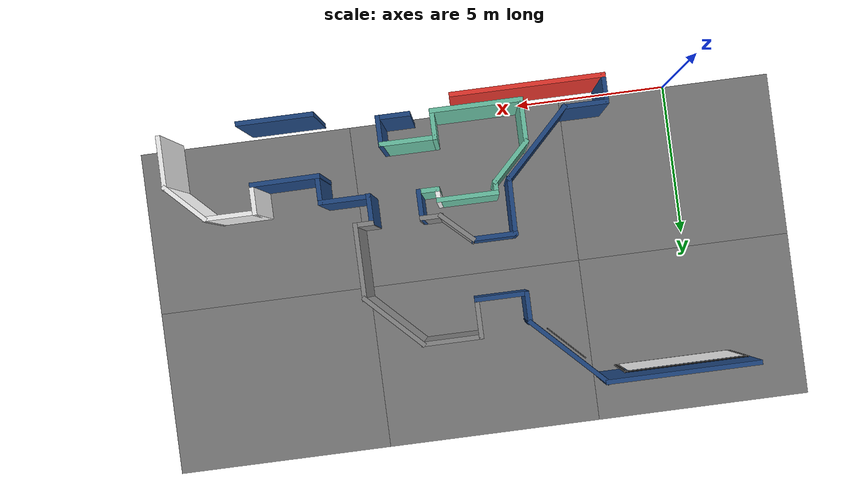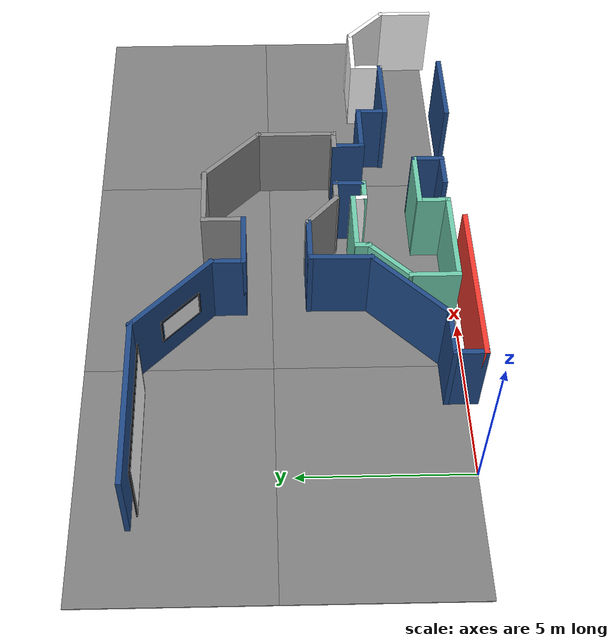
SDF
<sdf version="1.7">
 <world name="default">
  <model name="among_us_world">
   <pose>0.133216 -0.12311 0 0 -0 0</pose>
   <link name="Wall_0">
    <collision name="Wall_0_Collision">
     <geometry><box><size>5 0.15 2.5</size></box></geometry>
     <pose>0 0 1.25 0 -0 0</pose>
    </collision>
    <visual name="Wall_0_Visual">
     <pose>0 0 1.25 0 -0 0</pose>
     <geometry><box><size>5 0.15 2.5</size></box></geometry>
     <material>
      <ambient>0.12549 0.290196 0.529412 1</ambient>
      <diffuse>0.12549 0.290196 0.529412 1</diffuse>
      <specular>0.08 0.08 0.08 1</specular>
      <emissive>0 0 0 1</emissive>
      <pbr>
       <metal>
        <albedo_map>model://asphalt_plane/materials/textures/tarmac.png</albedo_map>
        <roughness>0.85</roughness>
        <metalness>0</metalness>
       </metal>
      </pbr>
     </material>
     <meta><layer>0</layer></meta>
    </visual>
    <pose>0.883234 9.56872 0 0 -0 0</pose>
   </link>
   <link name="Wall_1">
    <collision name="Wall_1_Collision">
     <geometry><box><size>3.25 0.15 2.5</size></box></geometry>
     <pose>0 0 1.25 0 -0 0</pose>
    </collision>
    <visual name="Wall_1_Visual">
     <pose>0 0 1.25 0 -0 0</pose>
     <geometry><box><size>3.25 0.15 2.5</size></box></geometry>
     <material>
      <ambient>0.12549 0.290196 0.529412 1</ambient>
      <diffuse>0.12549 0.290196 0.529412 1</diffuse>
      <specular>0.08 0.08 0.08 1</specular>
      <emissive>0 0 0 1</emissive>
      <pbr>
       <metal>
        <albedo_map>model://asphalt_plane/materials/textures/tarmac.png</albedo_map>
        <roughness>0.85</roughness>
        <metalness>0</metalness>
       </metal>
      </pbr>
     </material>
     <meta><layer>0</layer></meta>
    </visual>
    <pose>4.40446 8.47278 0 0 -0 -0.785267</pose>
   </link>
   <link name="Wall_10">
    <collision name="Wall_10_Collision">
     <geometry><box><size>0.677967 0.15 2.5</size></box></geometry>
     <pose>0 0 1.25 0 -0 0</pose>
    </collision>
    <visual name="Wall_10_Visual">
     <pose>0 0 1.25 0 -0 0</pose>
     <geometry><box><size>0.677967 0.15 2.5</size></box></geometry>
     <material>
      <ambient>0.55 0.55 0.55 1</ambient>
      <diffuse>0.55 0.55 0.55 1</diffuse>
      <specular>0.08 0.08 0.08 1</specular>
      <emissive>0 0 0 1</emissive>
      <pbr><metal><roughness>0.85</roughness><metalness>0</metalness></metal></pbr>
     </material>
     <meta><layer>0</layer></meta>
    </visual>
    <pose>10.3484 3.61514 0 0 -0 3.14159</pose>
   </link>
   <link name="Wall_11">
    <collision name="Wall_11_Collision">
     <geometry><box><size>1 0.15 2.5</size></box></geometry>
     <pose>0 0 1.25 0 -0 0</pose>
    </collision>
    <visual name="Wall_11_Visual">
     <pose>0 0 1.25 0 -0 0</pose>
     <geometry><box><size>1 0.15 2.5</size></box></geometry>
     <material>
      <ambient>0.12549 0.290196 0.529412 1</ambient>
      <diffuse>0.12549 0.290196 0.529412 1</diffuse>
      <specular>0.08 0.08 0.08 1</specular>
      <emissive>0 0 0 1</emissive>
      <pbr>
       <metal>
        <albedo_map>model://asphalt_plane/materials/textures/tarmac.png</albedo_map>
        <roughness>0.85</roughness>
        <metalness>0</metalness>
       </metal>
      </pbr>
     </material>
     <meta><layer>0</layer></meta>
    </visual>
    <pose>10.0844 3.17225 0 0 -0 -1.5708</pose>
   </link>
   <link name="Wall_118">
    <collision name="Wall_118_Collision">
     <geometry><box><size>1.5 0.15 2.5</size></box></geometry>
     <pose>0 0 1.25 0 -0 0</pose>
    </collision>
    <visual name="Wall_118_Visual">
     <pose>0 0 1.25 0 -0 0</pose>
     <geometry><box><size>1.5 0.15 2.5</size></box></geometry>
     <material>
      <ambient>0.12549 0.290196 0.529412 1</ambient>
      <diffuse>0.12549 0.290196 0.529412 1</diffuse>
      <specular>0.08 0.08 0.08 1</specular>
      <emissive>0 0 0 1</emissive>
      <pbr>
       <metal>
        <albedo_map>model://asphalt_plane/materials/textures/tarmac.png</albedo_map>
        <roughness>0.85</roughness>
        <metalness>0</metalness>
       </metal>
      </pbr>
     </material>
     <meta><layer>0</layer></meta>
    </visual>
    <pose>6.27303 4.52497 0 0 -0 0</pose>
   </link>
   <link name="Wall_119">
    <collision name="Wall_119_Collision">
     <geometry><box><size>1.41276 0.15 2.5</size></box></geometry>
     <pose>0 0 1.25 0 -0 0</pose>
    </collision>
    <visual name="Wall_119_Visual">
     <pose>0 0 1.25 0 -0 0</pose>
     <geometry><box><size>1.41276 0.15 2.5</size></box></geometry>
     <material>
      <ambient>0.55 0.55 0.55 1</ambient>
      <diffuse>0.55 0.55 0.55 1</diffuse>
      <specular>0.08 0.08 0.08 1</specular>
      <emissive>0 0 0 1</emissive>
      <pbr><metal><roughness>0.85</roughness><metalness>0</metalness></metal></pbr>
     </material>
     <meta><layer>0</layer></meta>
    </visual>
    <pose>7.42533 4.09435 0 0 -0 -0.750545</pose>
   </link>
   <link name="Wall_12">
    <collision name="Wall_12_Collision">
     <geometry><box><size>1.67797 0.15 2.5</size></box></geometry>
     <pose>0 0 1.25 0 -0 0</pose>
    </collision>
    <visual name="Wall_12_Visual">
     <pose>0 0 1.25 0 -0 0</pose>
     <geometry><box><size>1.67797 0.15 2.5</size></box></geometry>
     <material>
      <ambient>0.12549 0.290196 0.529412 1</ambient>
      <diffuse>0.12549 0.290196 0.529412 1</diffuse>
      <specular>0.08 0.08 0.08 1</specular>
      <emissive>0 0 0 1</emissive>
      <pbr>
       <metal>
        <albedo_map>model://asphalt_plane/materials/textures/tarmac.png</albedo_map>
        <roughness>0.85</roughness>
        <metalness>0</metalness>
       </metal>
      </pbr>
     </material>
     <meta><layer>0</layer></meta>
    </visual>
    <pose>10.8484 2.76514 0 0 -0 0</pose>
   </link>
   <link name="Wall_122">
    <collision name="Wall_122_Collision">
     <geometry><box><size>0.75 0.15 2.5</size></box></geometry>
     <pose>0 0 1.25 0 -0 0</pose>
    </collision>
    <visual name="Wall_122_Visual">
     <pose>0 0 1.25 0 -0 0</pose>
     <geometry><box><size>0.75 0.15 2.5</size></box></geometry>
     <material>
      <ambient>0.55 0.55 0.55 1</ambient>
      <diffuse>0.55 0.55 0.55 1</diffuse>
      <specular>0.08 0.08 0.08 1</specular>
      <emissive>0 0 0 1</emissive>
      <pbr><metal><roughness>0.85</roughness><metalness>0</metalness></metal></pbr>
     </material>
     <meta><layer>0</layer></meta>
    </visual>
    <pose>8.18707 3.66372 0 0 -0 0</pose>
   </link>
   <link name="Wall_123">
    <collision name="Wall_123_Collision">
     <geometry><box><size>1 0.15 2.5</size></box></geometry>
     <pose>0 0 1.25 0 -0 0</pose>
    </collision>
    <visual name="Wall_123_Visual">
     <pose>0 0 1.25 0 -0 0</pose>
     <geometry><box><size>1 0.15 2.5</size></box></geometry>
     <material>
      <ambient>0.12549 0.290196 0.529412 1</ambient>
      <diffuse>0.12549 0.290196 0.529412 1</diffuse>
      <specular>0.08 0.08 0.08 1</specular>
      <emissive>0 0 0 1</emissive>
      <pbr>
       <metal>
        <albedo_map>model://asphalt_plane/materials/textures/tarmac.png</albedo_map>
        <roughness>0.85</roughness>
        <metalness>0</metalness>
       </metal>
      </pbr>
     </material>
     <meta><layer>0</layer></meta>
    </visual>
    <pose>8.48707 3.23872 0 0 -0 -1.5708</pose>
   </link>
   <link name="Wall_124">
    <collision name="Wall_124_Collision">
     <geometry><box><size>0.75 0.15 2.5</size></box></geometry>
     <pose>0 0 1.25 0 -0 0</pose>
    </collision>
    <visual name="Wall_124_Visual">
     <pose>0 0 1.25 0 -0 0</pose>
     <geometry><box><size>0.75 0.15 2.5</size></box></geometry>
     <material>
      <ambient>0.435294 0.796078 0.67451 1</ambient>
      <diffuse>0.435294 0.796078 0.67451 1</diffuse>
      <specular>0.08 0.08 0.08 1</specular>
      <emissive>0 0 0 1</emissive>
      <pbr>
       <metal>
        <albedo_map>model://among_us_world/materials/textures/ceiling_tiled_111_203_172.jpg</albedo_map>
        <roughness>0.85</roughness>
        <metalness>0</metalness>
       </metal>
      </pbr>
     </material>
     <meta><layer>0</layer></meta>
    </visual>
    <pose>8.18707 2.81372 0 0 -0 3.14159</pose>
   </link>
   <link name="Wall_125">
    <collision name="Wall_125_Collision">
     <geometry><box><size>0.5 0.15 2.5</size></box></geometry>
     <pose>0 0 1.25 0 -0 0</pose>
    </collision>
    <visual name="Wall_125_Visual">
     <pose>0 0 1.25 0 -0 0</pose>
     <geometry><box><size>0.5 0.15 2.5</size></box></geometry>
     <material>
      <ambient>1 1 1 1</ambient>
      <diffuse>1 1 1 1</diffuse>
      <specular>0.08 0.08 0.08 1</specular>
      <emissive>0 0 0 1</emissive>
      <pbr>
       <metal>
        <albedo_map>model://among_us_world/materials/textures/ceiling_tiled_255_255_255.jpg</albedo_map>
        <roughness>0.85</roughness>
        <metalness>0</metalness>
       </metal>
      </pbr>
     </material>
     <meta><layer>0</layer></meta>
    </visual>
    <pose>7.88707 2.98872 0 0 -0 1.5708</pose>
   </link>
   <link name="Wall_126">
    <collision name="Wall_126_Collision">
     <geometry><box><size>2 0.15 2.5</size></box></geometry>
     <pose>0 0 1.25 0 -0 0</pose>
    </collision>
    <visual name="Wall_126_Visual">
     <pose>0 0 1.25 0 -0 0</pose>
     <geometry><box><size>2 0.15 2.5</size></box></geometry>
     <material>
      <ambient>0.435294 0.796078 0.67451 1</ambient>
      <diffuse>0.435294 0.796078 0.67451 1</diffuse>
      <specular>0.08 0.08 0.08 1</specular>
      <emissive>0 0 0 1</emissive>
      <pbr>
       <metal>
        <albedo_map>model://among_us_world/materials/textures/ceiling_tiled_111_203_172.jpg</albedo_map>
        <roughness>0.85</roughness>
        <metalness>0</metalness>
       </metal>
      </pbr>
     </material>
     <meta><layer>0</layer></meta>
    </visual>
    <pose>6.96207 3.16372 0 0 -0 3.14159</pose>
   </link>
   <link name="Wall_127">
    <collision name="Wall_127_Collision">
     <geometry><box><size>0.5 0.15 2.5</size></box></geometry>
     <pose>0 0 1.25 0 -0 0</pose>
    </collision>
    <visual name="Wall_127_Visual">
     <pose>0 0 1.25 0 -0 0</pose>
     <geometry><box><size>0.5 0.15 2.5</size></box></geometry>
     <material>
      <ambient>0.435294 0.796078 0.67451 1</ambient>
      <diffuse>0.435294 0.796078 0.67451 1</diffuse>
      <specular>0.08 0.08 0.08 1</specular>
      <emissive>0 0 0 1</emissive>
      <pbr>
       <metal>
        <albedo_map>model://among_us_world/materials/textures/ceiling_tiled_111_203_172.jpg</albedo_map>
        <roughness>0.85</roughness>
        <metalness>0</metalness>
       </metal>
      </pbr>
     </material>
     <meta><layer>0</layer></meta>
    </visual>
    <pose>6.03707 2.98872 0 0 -0 -1.5708</pose>
   </link>
   <link name="Wall_128">
    <collision name="Wall_128_Collision">
     <geometry><box><size>1.75 0.15 2.5</size></box></geometry>
     <pose>0 0 1.25 0 -0 0</pose>
    </collision>
    <visual name="Wall_128_Visual">
     <pose>0 0 1.25 0 -0 0</pose>
     <geometry><box><size>1.75 0.15 2.5</size></box></geometry>
     <material>
      <ambient>0.435294 0.796078 0.67451 1</ambient>
      <diffuse>0.435294 0.796078 0.67451 1</diffuse>
      <specular>0.08 0.08 0.08 1</specular>
      <emissive>0 0 0 1</emissive>
      <pbr>
       <metal>
        <albedo_map>model://among_us_world/materials/textures/ceiling_tiled_111_203_172.jpg</albedo_map>
        <roughness>0.85</roughness>
        <metalness>0</metalness>
       </metal>
      </pbr>
     </material>
     <meta><layer>0</layer></meta>
    </visual>
    <pose>5.47138 2.24804 0 0 -0 -2.35619</pose>
   </link>
   <link name="Wall_129">
    <collision name="Wall_129_Collision">
     <geometry><box><size>1.5 0.15 2.5</size></box></geometry>
     <pose>0 0 1.25 0 -0 0</pose>
    </collision>
    <visual name="Wall_129_Visual">
     <pose>0 0 1.25 0 -0 0</pose>
     <geometry><box><size>1.5 0.15 2.5</size></box></geometry>
     <material>
      <ambient>0.435294 0.796078 0.67451 1</ambient>
      <diffuse>0.435294 0.796078 0.67451 1</diffuse>
      <specular>0.08 0.08 0.08 1</specular>
      <emissive>0 0 0 1</emissive>
      <pbr><metal><roughness>0.85</roughness><metalness>0</metalness></metal></pbr>
     </material>
     <meta><layer>0</layer></meta>
    </visual>
    <pose>4.9057 1.00735 0 0 -0 -1.5708</pose>
   </link>
   <link name="Wall_13">
    <collision name="Wall_13_Collision">
     <geometry><box><size>0.99953 0.15 2.5</size></box></geometry>
     <pose>0 0 1.25 0 -0 0</pose>
    </collision>
    <visual name="Wall_13_Visual">
     <pose>0 0 1.25 0 -0 0</pose>
     <geometry><box><size>0.99953 0.15 2.5</size></box></geometry>
     <material>
      <ambient>0.12549 0.290196 0.529412 1</ambient>
      <diffuse>0.12549 0.290196 0.529412 1</diffuse>
      <specular>0.08 0.08 0.08 1</specular>
      <emissive>0 0 0 1</emissive>
      <pbr>
       <metal>
        <albedo_map>model://asphalt_plane/materials/textures/tarmac.png</albedo_map>
        <roughness>0.85</roughness>
        <metalness>0</metalness>
       </metal>
      </pbr>
     </material>
     <meta><layer>0</layer></meta>
    </visual>
    <pose>11.6124 2.34037 0 0 -0 -1.5708</pose>
   </link>
   <link name="Wall_130">
    <collision name="Wall_130_Collision">
     <geometry><box><size>3 0.15 2.5</size></box></geometry>
     <pose>0 0 1.25 0 -0 0</pose>
    </collision>
    <visual name="Wall_130_Visual">
     <pose>0 0 1.25 0 -0 0</pose>
     <geometry><box><size>3 0.15 2.5</size></box></geometry>
     <material>
      <ambient>0.435294 0.796078 0.67451 1</ambient>
      <diffuse>0.435294 0.796078 0.67451 1</diffuse>
      <specular>0.08 0.08 0.08 1</specular>
      <emissive>0 0 0 1</emissive>
      <pbr>
       <metal>
        <albedo_map>model://among_us_world/materials/textures/ceiling_tiled_111_203_172.jpg</albedo_map>
        <roughness>0.85</roughness>
        <metalness>0</metalness>
       </metal>
      </pbr>
     </material>
     <meta><layer>0</layer></meta>
    </visual>
    <pose>6.3307 0.332351 0 0 -0 0</pose>
   </link>
   <link name="Wall_131">
    <collision name="Wall_131_Collision">
     <geometry><box><size>1 0.15 2.5</size></box></geometry>
     <pose>0 0 1.25 0 -0 0</pose>
    </collision>
    <visual name="Wall_131_Visual">
     <pose>0 0 1.25 0 -0 0</pose>
     <geometry><box><size>1 0.15 2.5</size></box></geometry>
     <material>
      <ambient>0.435294 0.796078 0.67451 1</ambient>
      <diffuse>0.435294 0.796078 0.67451 1</diffuse>
      <specular>0.08 0.08 0.08 1</specular>
      <emissive>0 0 0 1</emissive>
      <pbr>
       <metal>
        <albedo_map>model://among_us_world/materials/textures/ceiling_tiled_111_203_172.jpg</albedo_map>
        <roughness>0.85</roughness>
        <metalness>0</metalness>
       </metal>
      </pbr>
     </material>
     <meta><layer>0</layer></meta>
    </visual>
    <pose>7.7557 0.757351 0 0 -0 1.5708</pose>
   </link>
   <link name="Wall_132">
    <collision name="Wall_132_Collision">
     <geometry><box><size>1.85593 0.15 2.5</size></box></geometry>
     <pose>0 0 1.25 0 -0 0</pose>
    </collision>
    <visual name="Wall_132_Visual">
     <pose>0 0 1.25 0 -0 0</pose>
     <geometry><box><size>1.85593 0.15 2.5</size></box></geometry>
     <material>
      <ambient>0.435294 0.796078 0.67451 1</ambient>
      <diffuse>0.435294 0.796078 0.67451 1</diffuse>
      <specular>0.08 0.08 0.08 1</specular>
      <emissive>0 0 0 1</emissive>
      <pbr>
       <metal>
        <albedo_map>model://among_us_world/materials/textures/ceiling_tiled_111_203_172.jpg</albedo_map>
        <roughness>0.85</roughness>
        <metalness>0</metalness>
       </metal>
      </pbr>
     </material>
     <meta><layer>0</layer></meta>
    </visual>
    <pose>8.60867 1.18235 0 0 -0 0</pose>
   </link>
   <link name="Wall_133">
    <collision name="Wall_133_Collision">
     <geometry><box><size>1 0.15 2.5</size></box></geometry>
     <pose>0 0 1.25 0 -0 0</pose>
    </collision>
    <visual name="Wall_133_Visual">
     <pose>0 0 1.25 0 -0 0</pose>
     <geometry><box><size>1 0.15 2.5</size></box></geometry>
     <material>
      <ambient>0.12549 0.290196 0.529412 1</ambient>
      <diffuse>0.12549 0.290196 0.529412 1</diffuse>
      <specular>0.08 0.08 0.08 1</specular>
      <emissive>0 0 0 1</emissive>
      <pbr>
       <metal>
        <albedo_map>model://asphalt_plane/materials/textures/tarmac.png</albedo_map>
        <roughness>0.85</roughness>
        <metalness>0</metalness>
       </metal>
      </pbr>
     </material>
     <meta><layer>0</layer></meta>
    </visual>
    <pose>9.47952 0.757351 0 0 -0 -1.5708</pose>
   </link>
   <link name="Wall_134">
    <collision name="Wall_134_Collision">
     <geometry><box><size>1.10593 0.15 2.5</size></box></geometry>
     <pose>0 0 1.25 0 -0 0</pose>
    </collision>
    <visual name="Wall_134_Visual">
     <pose>0 0 1.25 0 -0 0</pose>
     <geometry><box><size>1.10593 0.15 2.5</size></box></geometry>
     <material>
      <ambient>0.12549 0.290196 0.529412 1</ambient>
      <diffuse>0.12549 0.290196 0.529412 1</diffuse>
      <specular>0.08 0.08 0.08 1</specular>
      <emissive>0 0 0 1</emissive>
      <pbr>
       <metal>
        <albedo_map>model://asphalt_plane/materials/textures/tarmac.png</albedo_map>
        <roughness>0.85</roughness>
        <metalness>0</metalness>
       </metal>
      </pbr>
     </material>
     <meta><layer>0</layer></meta>
    </visual>
    <pose>8.98367 0.332351 0 0 -0 3.14159</pose>
   </link>
   <link name="Wall_14">
    <collision name="Wall_14_Collision">
     <geometry><box><size>2.25007 0.15 2.5</size></box></geometry>
     <pose>0 0 1.25 0 -0 0</pose>
    </collision>
    <visual name="Wall_14_Visual">
     <pose>0 0 1.25 0 -0 0</pose>
     <geometry><box><size>2.25007 0.15 2.5</size></box></geometry>
     <material>
      <ambient>0.12549 0.290196 0.529412 1</ambient>
      <diffuse>0.12549 0.290196 0.529412 1</diffuse>
      <specular>0.08 0.08 0.08 1</specular>
      <emissive>0 0 0 1</emissive>
      <pbr>
       <metal>
        <albedo_map>model://asphalt_plane/materials/textures/tarmac.png</albedo_map>
        <roughness>0.85</roughness>
        <metalness>0</metalness>
       </metal>
      </pbr>
     </material>
     <meta><layer>0</layer></meta>
    </visual>
    <pose>12.6445 1.92431 0 0 -0 0.008281</pose>
   </link>
   <link name="Wall_15">
    <collision name="Wall_15_Collision">
     <geometry><box><size>1.02562 0.15 2.5</size></box></geometry>
     <pose>0 0 1.25 0 -0 0</pose>
    </collision>
    <visual name="Wall_15_Visual">
     <pose>0 0 1.25 0 -0 0</pose>
     <geometry><box><size>1.02562 0.15 2.5</size></box></geometry>
     <material>
      <ambient>1 1 1 1</ambient>
      <diffuse>1 1 1 1</diffuse>
      <specular>0.08 0.08 0.08 1</specular>
      <emissive>0 0 0 1</emissive>
      <pbr>
       <metal>
        <albedo_map>model://among_us_world/materials/textures/ceiling_tiled_46_52_54.jpg</albedo_map>
        <roughness>0.85</roughness>
        <metalness>0</metalness>
       </metal>
      </pbr>
     </material>
     <meta><layer>0</layer></meta>
    </visual>
    <pose>13.7124 2.37081 0 0 -0 1.5708</pose>
   </link>
   <link name="Wall_179">
    <collision name="Wall_179_Collision">
     <geometry><box><size>1.90693 0.15 2.5</size></box></geometry>
     <pose>0 0 1.25 0 -0 0</pose>
    </collision>
    <visual name="Wall_179_Visual">
     <pose>0 0 1.25 0 -0 0</pose>
     <geometry><box><size>1.90693 0.15 2.5</size></box></geometry>
     <material>
      <ambient>0.12549 0.290196 0.529412 1</ambient>
      <diffuse>0.12549 0.290196 0.529412 1</diffuse>
      <specular>0.08 0.08 0.08 1</specular>
      <emissive>0 0 0 1</emissive>
      <pbr>
       <metal>
        <albedo_map>model://asphalt_plane/materials/textures/tarmac.png</albedo_map>
        <roughness>0.85</roughness>
        <metalness>0</metalness>
       </metal>
      </pbr>
     </material>
     <meta><layer>0</layer></meta>
    </visual>
    <pose>5.59803 3.64664 0 0 -0 -1.58851</pose>
   </link>
   <link name="Wall_180">
    <collision name="Wall_180_Collision">
     <geometry><box><size>3 0.15 2.5</size></box></geometry>
     <pose>0 0 1.25 0 -0 0</pose>
    </collision>
    <visual name="Wall_180_Visual">
     <pose>0 0 1.25 0 -0 0</pose>
     <geometry><box><size>3 0.15 2.5</size></box></geometry>
     <material>
      <ambient>0.12549 0.290196 0.529412 1</ambient>
      <diffuse>0.12549 0.290196 0.529412 1</diffuse>
      <specular>0.08 0.08 0.08 1</specular>
      <emissive>0 0 0 1</emissive>
      <pbr>
       <metal>
        <albedo_map>model://asphalt_plane/materials/textures/tarmac.png</albedo_map>
        <roughness>0.85</roughness>
        <metalness>0</metalness>
       </metal>
      </pbr>
     </material>
     <meta><layer>0</layer></meta>
    </visual>
    <pose>4.57485 1.76069 0 0 -0 -2.35619</pose>
   </link>
   <link name="Wall_183">
    <collision name="Wall_183_Collision">
     <geometry><box><size>1.5 0.15 2.5</size></box></geometry>
     <pose>0 0 1.25 0 -0 0</pose>
    </collision>
    <visual name="Wall_183_Visual">
     <pose>0 0 1.25 0 -0 0</pose>
     <geometry><box><size>1.5 0.15 2.5</size></box></geometry>
     <material>
      <ambient>0.12549 0.290196 0.529412 1</ambient>
      <diffuse>0.12549 0.290196 0.529412 1</diffuse>
      <specular>0.08 0.08 0.08 1</specular>
      <emissive>0 0 0 1</emissive>
      <pbr>
       <metal>
        <albedo_map>model://asphalt_plane/materials/textures/tarmac.png</albedo_map>
        <roughness>0.85</roughness>
        <metalness>0</metalness>
       </metal>
      </pbr>
     </material>
     <meta><layer>0</layer></meta>
    </visual>
    <pose>2.89222 0.753062 0 0 -0 3.14159</pose>
   </link>
   <link name="Wall_184">
    <collision name="Wall_184_Collision">
     <geometry><box><size>1 0.15 2.5</size></box></geometry>
     <pose>0 0 1.25 0 -0 0</pose>
    </collision>
    <visual name="Wall_184_Visual">
     <pose>0 0 1.25 0 -0 0</pose>
     <geometry><box><size>1 0.15 2.5</size></box></geometry>
     <material>
      <ambient>0.12549 0.290196 0.529412 1</ambient>
      <diffuse>0.12549 0.290196 0.529412 1</diffuse>
      <specular>0.08 0.08 0.08 1</specular>
      <emissive>0 0 0 1</emissive>
      <pbr>
       <metal>
        <albedo_map>model://asphalt_plane/materials/textures/tarmac.png</albedo_map>
        <roughness>0.85</roughness>
        <metalness>0</metalness>
       </metal>
      </pbr>
     </material>
     <meta><layer>0</layer></meta>
    </visual>
    <pose>2.21722 0.328062 0 0 -0 -1.5708</pose>
   </link>
   <link name="Wall_185">
    <collision name="Wall_185_Collision">
     <geometry><box><size>5 0.15 2.5</size></box></geometry>
     <pose>0 0 1.25 0 -0 0</pose>
    </collision>
    <visual name="Wall_185_Visual">
     <pose>0 0 1.25 0 -0 0</pose>
     <geometry><box><size>5 0.15 2.5</size></box></geometry>
     <material>
      <ambient>0.95 0.22 0.18 1</ambient>
      <diffuse>0.95 0.22 0.18 1</diffuse>
      <specular>0.08 0.08 0.08 1</specular>
      <emissive>0 0 0 1</emissive>
      <pbr>
       <metal>
        <albedo_map>model://among_us_world/materials/textures/ceiling_tiled_164_0_0.jpg</albedo_map>
        <roughness>0.85</roughness>
        <metalness>0</metalness>
       </metal>
      </pbr>
     </material>
     <meta><layer>0</layer></meta>
    </visual>
    <pose>4.64222 -0.096938 0 0 -0 0</pose>
   </link>
   <link name="Wall_19">
    <collision name="Wall_19_Collision">
     <geometry><box><size>1.75 0.15 2.5</size></box></geometry>
     <pose>0 0 1.25 0 -0 0</pose>
    </collision>
    <visual name="Wall_19_Visual">
     <pose>0 0 1.25 0 -0 0</pose>
     <geometry><box><size>1.75 0.15 2.5</size></box></geometry>
     <material>
      <ambient>1 1 1 1</ambient>
      <diffuse>1 1 1 1</diffuse>
      <specular>0.08 0.08 0.08 1</specular>
      <emissive>0 0 0 1</emissive>
      <pbr>
       <metal>
        <albedo_map>model://among_us_world/materials/textures/ceiling_tiled_46_52_54.jpg</albedo_map>
        <roughness>0.85</roughness>
        <metalness>0</metalness>
       </metal>
      </pbr>
     </material>
     <meta><layer>0</layer></meta>
    </visual>
    <pose>14.5124 2.80862 0 0 -0 0</pose>
   </link>
   <link name="Wall_20">
    <collision name="Wall_20_Collision">
     <geometry><box><size>1.75 0.15 2.5</size></box></geometry>
     <pose>0 0 1.25 0 -0 0</pose>
    </collision>
    <visual name="Wall_20_Visual">
     <pose>0 0 1.25 0 -0 0</pose>
     <geometry><box><size>1.75 0.15 2.5</size></box></geometry>
     <material>
      <ambient>1 1 1 1</ambient>
      <diffuse>1 1 1 1</diffuse>
      <specular>0.08 0.08 0.08 1</specular>
      <emissive>0 0 0 1</emissive>
      <pbr>
       <metal>
        <albedo_map>model://among_us_world/materials/textures/ceiling_tiled_46_52_54.jpg</albedo_map>
        <roughness>0.85</roughness>
        <metalness>0</metalness>
       </metal>
      </pbr>
     </material>
     <meta><layer>0</layer></meta>
    </visual>
    <pose>15.8781 2.24293 0 0 -0 -0.785398</pose>
   </link>
   <link name="Wall_21">
    <collision name="Wall_21_Collision">
     <geometry><box><size>1.75 0.15 2.5</size></box></geometry>
     <pose>0 0 1.25 0 -0 0</pose>
    </collision>
    <visual name="Wall_21_Visual">
     <pose>0 0 1.25 0 -0 0</pose>
     <geometry><box><size>1.75 0.15 2.5</size></box></geometry>
     <material>
      <ambient>1 1 1 1</ambient>
      <diffuse>1 1 1 1</diffuse>
      <specular>0.08 0.08 0.08 1</specular>
      <emissive>0 0 0 1</emissive>
      <pbr>
       <metal>
        <albedo_map>model://among_us_world/materials/textures/ceiling_tiled_255_255_255.jpg</albedo_map>
        <roughness>0.85</roughness>
        <metalness>0</metalness>
       </metal>
      </pbr>
     </material>
     <meta><layer>0</layer></meta>
    </visual>
    <pose>16.4438 0.877247 0 0 -0 -1.5708</pose>
   </link>
   <link name="Wall_25">
    <collision name="Wall_25_Collision">
     <geometry><box><size>2.5 0.15 2.5</size></box></geometry>
     <pose>0 0 1.25 0 -0 0</pose>
    </collision>
    <visual name="Wall_25_Visual">
     <pose>0 0 1.25 0 -0 0</pose>
     <geometry><box><size>2.5 0.15 2.5</size></box></geometry>
     <material>
      <ambient>0.12549 0.290196 0.529412 1</ambient>
      <diffuse>0.12549 0.290196 0.529412 1</diffuse>
      <specular>0.08 0.08 0.08 1</specular>
      <emissive>0 0 0 1</emissive>
      <pbr>
       <metal>
        <albedo_map>model://asphalt_plane/materials/textures/tarmac.png</albedo_map>
        <roughness>0.85</roughness>
        <metalness>0</metalness>
       </metal>
      </pbr>
     </material>
     <meta><layer>0</layer></meta>
    </visual>
    <pose>12.7142 -0.045708 0 0 -0 3.14159</pose>
   </link>
   <link name="Wall_4">
    <collision name="Wall_4_Collision">
     <geometry><box><size>1.06331 0.15 2.5</size></box></geometry>
     <pose>0 0 1.25 0 -0 0</pose>
    </collision>
    <visual name="Wall_4_Visual">
     <pose>0 0 1.25 0 -0 0</pose>
     <geometry><box><size>1.06331 0.15 2.5</size></box></geometry>
     <material>
      <ambient>0.12549 0.290196 0.529412 1</ambient>
      <diffuse>0.12549 0.290196 0.529412 1</diffuse>
      <specular>0.08 0.08 0.08 1</specular>
      <emissive>0 0 0 1</emissive>
      <pbr>
       <metal>
        <albedo_map>model://asphalt_plane/materials/textures/tarmac.png</albedo_map>
        <roughness>0.85</roughness>
        <metalness>0</metalness>
       </metal>
      </pbr>
     </material>
     <meta><layer>0</layer></meta>
    </visual>
    <pose>5.50068 6.92018 0 0 -0 -1.5708</pose>
   </link>
   <link name="Wall_5">
    <collision name="Wall_5_Collision">
     <geometry><box><size>1.75 0.15 2.5</size></box></geometry>
     <pose>0 0 1.25 0 -0 0</pose>
    </collision>
    <visual name="Wall_5_Visual">
     <pose>0 0 1.25 0 -0 0</pose>
     <geometry><box><size>1.75 0.15 2.5</size></box></geometry>
     <material>
      <ambient>0.12549 0.290196 0.529412 1</ambient>
      <diffuse>0.12549 0.290196 0.529412 1</diffuse>
      <specular>0.08 0.08 0.08 1</specular>
      <emissive>0 0 0 1</emissive>
      <pbr>
       <metal>
        <albedo_map>model://asphalt_plane/materials/textures/tarmac.png</albedo_map>
        <roughness>0.85</roughness>
        <metalness>0</metalness>
       </metal>
      </pbr>
     </material>
     <meta><layer>0</layer></meta>
    </visual>
    <pose>6.30068 6.44797 0 0 -0 0</pose>
   </link>
   <link name="Wall_6">
    <collision name="Wall_6_Collision">
     <geometry><box><size>1.31331 0.15 2.5</size></box></geometry>
     <pose>0 0 1.25 0 -0 0</pose>
    </collision>
    <visual name="Wall_6_Visual">
     <pose>0 0 1.25 0 -0 0</pose>
     <geometry><box><size>1.31331 0.15 2.5</size></box></geometry>
     <material>
      <ambient>0.55 0.55 0.55 1</ambient>
      <diffuse>0.55 0.55 0.55 1</diffuse>
      <specular>0.08 0.08 0.08 1</specular>
      <emissive>0 0 0 1</emissive>
      <pbr><metal><roughness>0.85</roughness><metalness>0</metalness></metal></pbr>
     </material>
     <meta><layer>0</layer></meta>
    </visual>
    <pose>7.10068 7.04518 0 0 -0 1.5708</pose>
   </link>
   <link name="Wall_7">
    <collision name="Wall_7_Collision">
     <geometry><box><size>2 0.15 2.5</size></box></geometry>
     <pose>0 0 1.25 0 -0 0</pose>
    </collision>
    <visual name="Wall_7_Visual">
     <pose>0 0 1.25 0 -0 0</pose>
     <geometry><box><size>2 0.15 2.5</size></box></geometry>
     <material>
      <ambient>0.55 0.55 0.55 1</ambient>
      <diffuse>0.55 0.55 0.55 1</diffuse>
      <specular>0.08 0.08 0.08 1</specular>
      <emissive>0 0 0 1</emissive>
      <pbr><metal><roughness>0.85</roughness><metalness>0</metalness></metal></pbr>
     </material>
     <meta><layer>0</layer></meta>
    </visual>
    <pose>8.02568 7.62684 0 0 -0 0</pose>
   </link>
   <link name="Wall_8">
    <collision name="Wall_8_Collision">
     <geometry><box><size>2.5 0.15 2.5</size></box></geometry>
     <pose>0 0 1.25 0 -0 0</pose>
    </collision>
    <visual name="Wall_8_Visual">
     <pose>0 0 1.25 0 -0 0</pose>
     <geometry><box><size>2.5 0.15 2.5</size></box></geometry>
     <material>
      <ambient>0.55 0.55 0.55 1</ambient>
      <diffuse>0.55 0.55 0.55 1</diffuse>
      <specular>0.08 0.08 0.08 1</specular>
      <emissive>0 0 0 1</emissive>
      <pbr><metal><roughness>0.85</roughness><metalness>0</metalness></metal></pbr>
     </material>
     <meta><layer>0</layer></meta>
    </visual>
    <pose>9.78153 6.79599 0 0 -0 -0.785398</pose>
   </link>
   <link name="Wall_9">
    <collision name="Wall_9_Collision">
     <geometry><box><size>2.5 0.15 2.5</size></box></geometry>
     <pose>0 0 1.25 0 -0 0</pose>
    </collision>
    <visual name="Wall_9_Visual">
     <pose>0 0 1.25 0 -0 0</pose>
     <geometry><box><size>2.5 0.15 2.5</size></box></geometry>
     <material>
      <ambient>0.55 0.55 0.55 1</ambient>
      <diffuse>0.55 0.55 0.55 1</diffuse>
      <specular>0.08 0.08 0.08 1</specular>
      <emissive>0 0 0 1</emissive>
      <pbr><metal><roughness>0.85</roughness><metalness>0</metalness></metal></pbr>
     </material>
     <meta><layer>0</layer></meta>
    </visual>
    <pose>10.6124 4.79014 0 0 -0 -1.5708</pose>
   </link>
   <static>1</static>
  </model>
  <model name="asphalt_tile_02_02">
   <static>1</static>
   <pose>0.000 2.750 -0.020 0 -0 0</pose>
   <link name="link">
    <collision name="collision"><geometry><box><size>7.200 5.500 0.040</size></box></geometry></collision>
    <visual name="visual">
     <cast_shadows>0</cast_shadows>
     <geometry><box><size>7.200 5.500 0.040</size></box></geometry>
     <material>
      <ambient>0.5 0.5 0.5 1</ambient>
      <diffuse>0.5 0.5 0.5 1</diffuse>
      <specular>0.2 0.2 0.2 1</specular>
      <emissive>0 0 0 1</emissive>
      <pbr>
       <metal>
        <albedo_map>model://asphalt_plane/materials/textures/tarmac.png</albedo_map>
        <roughness>0.85</roughness>
        <metalness>0</metalness>
       </metal>
      </pbr>
     </material>
    </visual>
   </link>
  </model>
  <model name="asphalt_tile_02_03">
   <static>1</static>
   <pose>7.200 2.750 -0.020 0 -0 0</pose>
   <link name="link">
    <collision name="collision"><geometry><box><size>7.200 5.500 0.040</size></box></geometry></collision>
    <visual name="visual">
     <cast_shadows>0</cast_shadows>
     <geometry><box><size>7.200 5.500 0.040</size></box></geometry>
     <material>
      <ambient>0.5 0.5 0.5 1</ambient>
      <diffuse>0.5 0.5 0.5 1</diffuse>
      <specular>0.2 0.2 0.2 1</specular>
      <emissive>0 0 0 1</emissive>
      <pbr>
       <metal>
        <albedo_map>model://asphalt_plane/materials/textures/tarmac.png</albedo_map>
        <roughness>0.85</roughness>
        <metalness>0</metalness>
       </metal>
      </pbr>
     </material>
    </visual>
   </link>
  </model>
  <model name="asphalt_tile_02_04">
   <static>1</static>
   <pose>14.400 2.750 -0.020 0 -0 0</pose>
   <link name="link">
    <collision name="collision"><geometry><box><size>7.200 5.500 0.040</size></box></geometry></collision>
    <visual name="visual">
     <cast_shadows>0</cast_shadows>
     <geometry><box><size>7.200 5.500 0.040</size></box></geometry>
     <material>
      <ambient>0.5 0.5 0.5 1</ambient>
      <diffuse>0.5 0.5 0.5 1</diffuse>
      <specular>0.2 0.2 0.2 1</specular>
      <emissive>0 0 0 1</emissive>
      <pbr>
       <metal>
        <albedo_map>model://asphalt_plane/materials/textures/tarmac.png</albedo_map>
        <roughness>0.85</roughness>
        <metalness>0</metalness>
       </metal>
      </pbr>
     </material>
    </visual>
   </link>
  </model>
  <model name="asphalt_tile_03_02">
   <static>1</static>
   <pose>0.000 8.250 -0.020 0 -0 0</pose>
   <link name="link">
    <collision name="collision"><geometry><box><size>7.200 5.500 0.040</size></box></geometry></collision>
    <visual name="visual">
     <cast_shadows>0</cast_shadows>
     <geometry><box><size>7.200 5.500 0.040</size></box></geometry>
     <material>
      <ambient>0.5 0.5 0.5 1</ambient>
      <diffuse>0.5 0.5 0.5 1</diffuse>
      <specular>0.2 0.2 0.2 1</specular>
      <emissive>0 0 0 1</emissive>
      <pbr>
       <metal>
        <albedo_map>model://asphalt_plane/materials/textures/tarmac.png</albedo_map>
        <roughness>0.85</roughness>
        <metalness>0</metalness>
       </metal>
      </pbr>
     </material>
    </visual>
   </link>
  </model>
  <model name="asphalt_tile_03_03">
   <static>1</static>
   <pose>7.200 8.250 -0.020 0 -0 0</pose>
   <link name="link">
    <collision name="collision"><geometry><box><size>7.200 5.500 0.040</size></box></geometry></collision>
    <visual name="visual">
     <cast_shadows>0</cast_shadows>
     <geometry><box><size>7.200 5.500 0.040</size></box></geometry>
     <material>
      <ambient>0.5 0.5 0.5 1</ambient>
      <diffuse>0.5 0.5 0.5 1</diffuse>
      <specular>0.2 0.2 0.2 1</specular>
      <emissive>0 0 0 1</emissive>
      <pbr>
       <metal>
        <albedo_map>model://asphalt_plane/materials/textures/tarmac.png</albedo_map>
        <roughness>0.85</roughness>
        <metalness>0</metalness>
       </metal>
      </pbr>
     </material>
    </visual>
   </link>
  </model>
  <model name="asphalt_tile_03_04">
   <static>1</static>
   <pose>14.400 8.250 -0.020 0 -0 0</pose>
   <link name="link">
    <collision name="collision"><geometry><box><size>7.200 5.500 0.040</size></box></geometry></collision>
    <visual name="visual">
     <cast_shadows>0</cast_shadows>
     <geometry><box><size>7.200 5.500 0.040</size></box></geometry>
     <material>
      <ambient>0.5 0.5 0.5 1</ambient>
      <diffuse>0.5 0.5 0.5 1</diffuse>
      <specular>0.2 0.2 0.2 1</specular>
      <emissive>0 0 0 1</emissive>
      <pbr>
       <metal>
        <albedo_map>model://asphalt_plane/materials/textures/tarmac.png</albedo_map>
        <roughness>0.85</roughness>
        <metalness>0</metalness>
       </metal>
      </pbr>
     </material>
    </visual>
   </link>
  </model>
  <model name="robotech_lab_picture">
   <static>1</static>
   <pose>0.883 9.250 1.22 0 -0 0</pose>
   <link name="link">
    <visual name="photo">
     <pose>0 -0.065 0 1.5708 0 0</pose>
     <geometry><plane><normal>0 0 1</normal><size>3.72 2.09</size></plane></geometry>
     <material>
      <ambient>1 1 1 1</ambient>
      <diffuse>1 1 1 1</diffuse>
      <specular>0 0 0 1</specular>
      <emissive>1 1 1 1</emissive>
      <pbr>
       <metal>
        <albedo_map>file:///home/manza/Desktop/hackaton/RobotechVirtualChallenge/src/ros2_bringup/worlds/models/among_us_world/materials/textures/logo.png</albedo_map>
        <emissive_map>file:///home/manza/Desktop/hackaton/RobotechVirtualChallenge/src/ros2_bringup/worlds/models/among_us_world/materials/textures/logo.png</emissive_map>
        <roughness>0.45</roughness>
        <metalness>0</metalness>
       </metal>
      </pbr>
     </material>
    </visual>
    <visual name="frame_top">
     <pose>0 -0.040 1.10875 0 -0 0</pose>
     <geometry><box><size>3.98 0.045 0.08</size></box></geometry>
     <material>
      <ambient>0.02 0.02 0.02 1</ambient>
      <diffuse>0.02 0.02 0.02 1</diffuse>
      <specular>0.02 0.02 0.02 1</specular>
     </material>
    </visual>
    <visual name="frame_bottom">
     <pose>0 -0.040 -1.10875 0 -0 0</pose>
     <geometry><box><size>3.98 0.045 0.08</size></box></geometry>
     <material>
      <ambient>0.02 0.02 0.02 1</ambient>
      <diffuse>0.02 0.02 0.02 1</diffuse>
      <specular>0.02 0.02 0.02 1</specular>
     </material>
    </visual>
    <visual name="frame_left">
     <pose>-1.94 -0.040 0 0 -0 0</pose>
     <geometry><box><size>0.08 0.045 2.30</size></box></geometry>
     <material>
      <ambient>0.02 0.02 0.02 1</ambient>
      <diffuse>0.02 0.02 0.02 1</diffuse>
      <specular>0.02 0.02 0.02 1</specular>
     </material>
    </visual>
    <visual name="frame_right">
     <pose>1.94 -0.040 0 0 -0 0</pose>
     <geometry><box><size>0.08 0.045 2.30</size></box></geometry>
     <material>
      <ambient>0.02 0.02 0.02 1</ambient>
      <diffuse>0.02 0.02 0.02 1</diffuse>
      <specular>0.02 0.02 0.02 1</specular>
     </material>
    </visual>
   </link>
  </model>
  <model name="football_diagonal_picture_c1">
   <static>1</static>
   <pose>4.532 8.158 1.350 0 -0 -0.785267</pose>
   <link name="link">
    <visual name="photo">
     <pose>0 -0.055 0 1.5708 0 0</pose>
     <geometry><plane><normal>0 0 1</normal><size>1.35 0.76</size></plane></geometry>
     <material>
      <ambient>1 1 1 1</ambient>
      <diffuse>1 1 1 1</diffuse>
      <specular>0 0 0 1</specular>
      <emissive>0.8 0.8 0.8 1</emissive>
      <pbr>
       <metal>
        <albedo_map>file:///home/manza/Desktop/hackaton/RobotechVirtualChallenge/src/ros2_bringup/worlds/models/among_us_world/materials/textures/aia.png</albedo_map>
        <emissive_map>file:///home/manza/Desktop/hackaton/RobotechVirtualChallenge/src/ros2_bringup/worlds/models/among_us_world/materials/textures/aia.png</emissive_map>
        <roughness>0.5</roughness>
        <metalness>0</metalness>
       </metal>
      </pbr>
     </material>
    </visual>
    <visual name="frame_top">
     <pose>0 -0.035 0.440 0 -0 0</pose>
     <geometry><box><size>1.47 0.035 0.045</size></box></geometry>
     <material>
      <ambient>0.02 0.02 0.02 1</ambient>
      <diffuse>0.02 0.02 0.02 1</diffuse>
      <specular>0.02 0.02 0.02 1</specular>
     </material>
    </visual>
    <visual name="frame_bottom">
     <pose>0 -0.035 -0.440 0 -0 0</pose>
     <geometry><box><size>1.47 0.035 0.045</size></box></geometry>
     <material>
      <ambient>0.02 0.02 0.02 1</ambient>
      <diffuse>0.02 0.02 0.02 1</diffuse>
      <specular>0.02 0.02 0.02 1</specular>
     </material>
    </visual>
    <visual name="frame_left">
     <pose>-0.735 -0.035 0 0 -0 0</pose>
     <geometry><box><size>0.045 0.035 0.88</size></box></geometry>
     <material>
      <ambient>0.02 0.02 0.02 1</ambient>
      <diffuse>0.02 0.02 0.02 1</diffuse>
      <specular>0.02 0.02 0.02 1</specular>
     </material>
    </visual>
    <visual name="frame_right">
     <pose>0.735 -0.035 0 0 -0 0</pose>
     <geometry><box><size>0.045 0.035 0.88</size></box></geometry>
     <material>
      <ambient>0.02 0.02 0.02 1</ambient>
      <diffuse>0.02 0.02 0.02 1</diffuse>
      <specular>0.02 0.02 0.02 1</specular>
     </material>
    </visual>
   </link>
  </model>
  <model name="football_diagonal_picture_c4">
   <static>1</static>
   <pose>4.703 1.496 1.350 0 -0 -2.356190</pose>
   <link name="link">
    <visual name="photo">
     <pose>0 -0.055 0 1.5708 0 0</pose>
     <geometry><plane><normal>0 0 1</normal><size>1.35 0.76</size></plane></geometry>
     <material>
      <ambient>1 1 1 1</ambient>
      <diffuse>1 1 1 1</diffuse>
      <specular>0 0 0 1</specular>
      <emissive>0.8 0.8 0.8 1</emissive>
      <pbr>
       <metal>
        <albedo_map>file:///home/manza/Desktop/hackaton/RobotechVirtualChallenge/src/ros2_bringup/worlds/models/among_us_world/materials/textures/best.jpeg</albedo_map>
        <emissive_map>file:///home/manza/Desktop/hackaton/RobotechVirtualChallenge/src/ros2_bringup/worlds/models/among_us_world/materials/textures/best.jpeg</emissive_map>
        <roughness>0.5</roughness>
        <metalness>0</metalness>
       </metal>
      </pbr>
     </material>
    </visual>
    <visual name="frame_top">
     <pose>0 -0.035 0.440 0 -0 0</pose>
     <geometry><box><size>1.47 0.035 0.045</size></box></geometry>
     <material>
      <ambient>0.02 0.02 0.02 1</ambient>
      <diffuse>0.02 0.02 0.02 1</diffuse>
      <specular>0.02 0.02 0.02 1</specular>
     </material>
    </visual>
    <visual name="frame_bottom">
     <pose>0 -0.035 -0.440 0 -0 0</pose>
     <geometry><box><size>1.47 0.035 0.045</size></box></geometry>
     <material>
      <ambient>0.02 0.02 0.02 1</ambient>
      <diffuse>0.02 0.02 0.02 1</diffuse>
      <specular>0.02 0.02 0.02 1</specular>
     </material>
    </visual>
    <visual name="frame_left">
     <pose>-0.735 -0.035 0 0 -0 0</pose>
     <geometry><box><size>0.045 0.035 0.88</size></box></geometry>
     <material>
      <ambient>0.02 0.02 0.02 1</ambient>
      <diffuse>0.02 0.02 0.02 1</diffuse>
      <specular>0.02 0.02 0.02 1</specular>
     </material>
    </visual>
    <visual name="frame_right">
     <pose>0.735 -0.035 0 0 -0 0</pose>
     <geometry><box><size>0.045 0.035 0.88</size></box></geometry>
     <material>
      <ambient>0.02 0.02 0.02 1</ambient>
      <diffuse>0.02 0.02 0.02 1</diffuse>
      <specular>0.02 0.02 0.02 1</specular>
     </material>
    </visual>
   </link>
  </model>
 </world>
</sdf>
